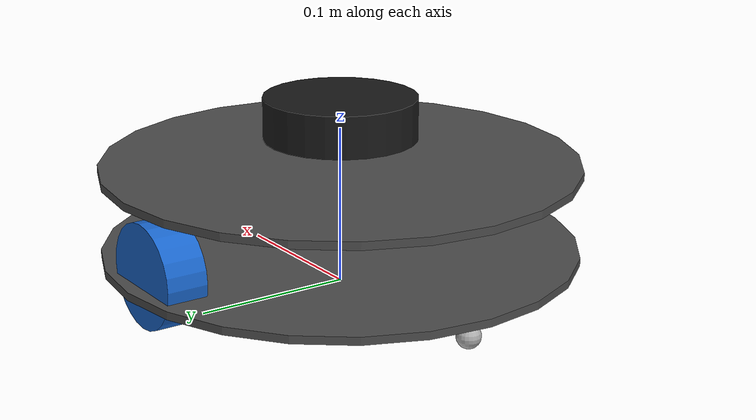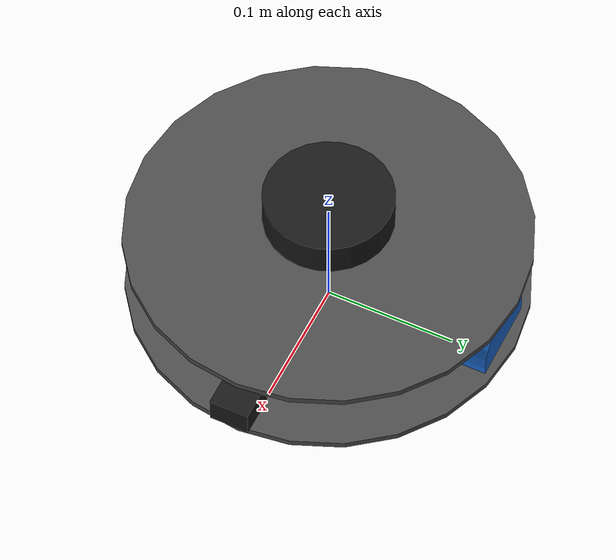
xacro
<?xml version="1.0" ?>

<robot name="p2_robot">

  <link name="base_link">

    <visual>

      <geometry>

        <box size="0.001 0.001 0.001"/>

      </geometry>

    </visual>

  </link>

  <link name="base_footprint"/>

  <joint name="base_footprint_joint" type="fixed">

    <parent link="base_footprint"/>

    <child link="base_link"/>

    <origin rpy="0 0 0" xyz="0 0 0.0325"/>

  </joint>

  <link name="lower_plate">

    <visual>

      <geometry>

        <cylinder length="0.005" radius="0.15"/>

      </geometry>

      <material name="dark_gray">

        <color rgba="0.3 0.3 0.3 1.0"/>

      </material>

    </visual>

    <collision>

      <geometry>

        <cylinder length="0.005" radius="0.15"/>

      </geometry>

    </collision>

    <inertial>

      <mass value="0.5"/>

      <inertia ixx="0.002" ixy="0" ixz="0" iyy="0.002" iyz="0" izz="0.004"/>

    </inertial>

  </link>

  <joint name="lower_plate_joint" type="fixed">

    <parent link="base_link"/>

    <child link="lower_plate"/>

    <origin rpy="0 0 0" xyz="0 0 -0.01"/>

  </joint>

  <link name="upper_plate">

    <visual>

      <geometry>

        <cylinder length="0.005" radius="0.15"/>

      </geometry>

      <material name="dark_gray"/>

    </visual>

    <collision>

      <geometry>

        <cylinder length="0.005" radius="0.15"/>

      </geometry>

    </collision>

    <inertial>

      <mass value="0.3"/>

      <inertia ixx="0.001" ixy="0" ixz="0" iyy="0.001" iyz="0" izz="0.002"/>

    </inertial>

  </link>

  <joint name="upper_plate_joint" type="fixed">

    <parent link="base_link"/>

    <child link="upper_plate"/>

    <origin rpy="0 0 0" xyz="0 0 0.045"/>

  </joint>

  <link name="left_wheel">

    <visual>

      <geometry>

        <cylinder length="0.026" radius="0.0325"/>

      </geometry>

      <material name="blue">

        <color rgba="0.1 0.4 0.8 1.0"/>

      </material>

    </visual>

    <collision>

      <geometry>

        <cylinder length="0.026" radius="0.0325"/>

      </geometry>

    </collision>

    <inertial>

      <mass value="0.15"/>

      <inertia ixx="4.8e-05" ixy="0" ixz="0" iyy="4.8e-05" iyz="0" izz="7.9e-05"/>

    </inertial>

  </link>

  <joint name="left_wheel_joint" type="continuous">

    <parent link="base_link"/>

    <child link="left_wheel"/>

    <origin rpy="-1.570796 0 0" xyz="0 0.1275 0"/>

    <axis xyz="0 0 1"/>

  </joint>

  <link name="right_wheel">

    <visual>

      <geometry>

        <cylinder length="0.026" radius="0.0325"/>

      </geometry>

      <material name="blue"/>

    </visual>

    <collision>

      <geometry>

        <cylinder length="0.026" radius="0.0325"/>

      </geometry>

    </collision>

    <inertial>

      <mass value="0.15"/>

      <inertia ixx="4.8e-05" ixy="0" ixz="0" iyy="4.8e-05" iyz="0" izz="7.9e-05"/>

    </inertial>

  </link>

  <joint name="right_wheel_joint" type="continuous">

    <parent link="base_link"/>

    <child link="right_wheel"/>

    <origin rpy="-1.570796 0 0" xyz="0 -0.1275 0"/>

    <axis xyz="0 0 1"/>

  </joint>

  <link name="front_caster_ball">

    <visual>

      <geometry><sphere radius="0.0075"/></geometry>

      <material name="light_gray"><color rgba="0.7 0.7 0.7 1.0"/></material>

    </visual>

    <collision>

      <geometry><sphere radius="0.0075"/></geometry>

    </collision>

    <inertial>

      <mass value="0.03"/>

      <inertia ixx="1e-6" ixy="0" ixz="0" iyy="1e-6" iyz="0" izz="1e-6"/>

    </inertial>

  </link>

  <joint name="front_caster_joint" type="fixed">

    <parent link="base_link"/><child link="front_caster_ball"/><origin xyz="0.13 0 -0.025"/>

  </joint>

  <link name="rear_caster_ball">

    <visual>

      <geometry><sphere radius="0.0075"/></geometry>

      <material name="light_gray"/>

    </visual>

    <collision>

      <geometry><sphere radius="0.0075"/></geometry>

    </collision>

    <inertial>

      <mass value="0.03"/>

      <inertia ixx="1e-6" ixy="0" ixz="0" iyy="1e-6" iyz="0" izz="1e-6"/>

    </inertial>

  </link>

  <joint name="rear_caster_joint" type="fixed">

    <parent link="base_link"/><child link="rear_caster_ball"/><origin xyz="-0.13 0 -0.025"/>

  </joint>

  <link name="lidar_link">

    <visual>

      <geometry><cylinder length="0.0263" radius="0.0482"/></geometry>

      <material name="black"><color rgba="0.1 0.1 0.1 1.0"/></material>

    </visual>

  </link>

  <joint name="lidar_joint" type="fixed">

    <parent link="upper_plate"/><child link="lidar_link"/><origin xyz="0 0 0.03"/>

  </joint>

  <link name="camera_link">

    <visual><geometry><box size="0.03 0.03 0.02"/></geometry><material name="black"/></visual>

  </link>

  <joint name="camera_joint" type="fixed">

    <parent link="base_link"/><child link="camera_link"/><origin xyz="0.148 0 0.0225"/>

  </joint>

  <gazebo>

    <plugin filename="gz-sim-diff-drive-system" name="gz::sim::systems::DiffDrive">

      <left_joint>left_wheel_joint</left_joint>

      <right_joint>right_wheel_joint</right_joint>

      <wheel_separation>0.255</wheel_separation>

      <wheel_radius>0.0325</wheel_radius>

      <topic>cmd_vel</topic>

      <child_frame_id>base_link</child_frame_id>

    </plugin>

  </gazebo>

  <gazebo reference="left_wheel"><mu1>1.0</mu1><mu2>1.0</mu2></gazebo>

  <gazebo reference="right_wheel"><mu1>1.0</mu1><mu2>1.0</mu2></gazebo>

  <gazebo reference="front_caster_ball"><mu1>0.0</mu1><mu2>0.0</mu2></gazebo>

  <gazebo reference="rear_caster_ball"><mu1>0.0</mu1><mu2>0.0</mu2></gazebo>

  <gazebo reference="lidar_link">

    <sensor name="lidar_sensor" type="gpu_lidar">

      <topic>scan</topic>

      <update_rate>10</update_rate>

      <ray>

        <scan><horizontal><samples>360</samples><min_angle>-3.14</min_angle><max_angle>3.14</max_angle></horizontal></scan>

        <range><min>0.12</min><max>8.0</max></range>

      </ray>

    </sensor>

  </gazebo>

  <gazebo reference="camera_link">

    <sensor name="camera_sensor" type="camera">

      <topic>camera/image_raw</topic>

      <camera>

        <horizontal_fov>1.2217</horizontal_fov>

        <image><width>640</width><height>480</height></image>

      </camera>

      <frame_id>camera_link</frame_id>

    </sensor>

  </gazebo>

</robot>
